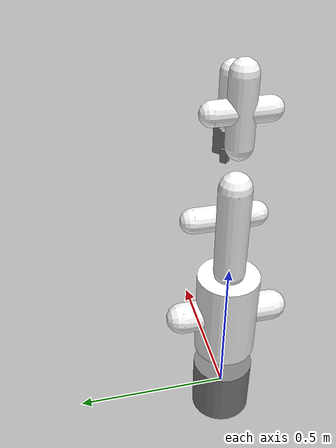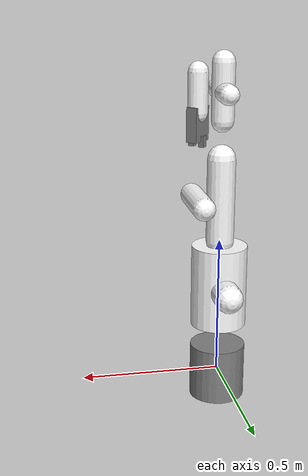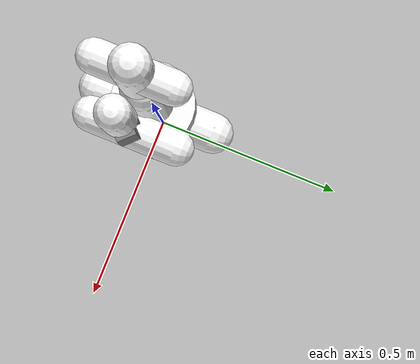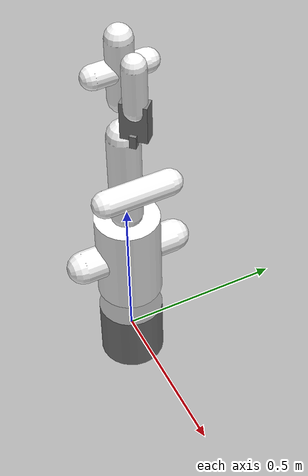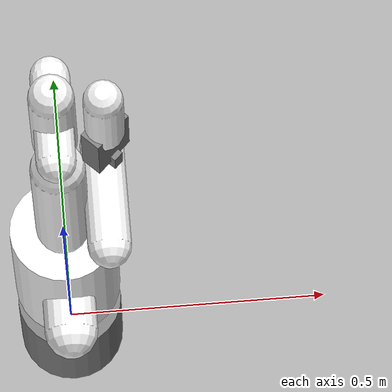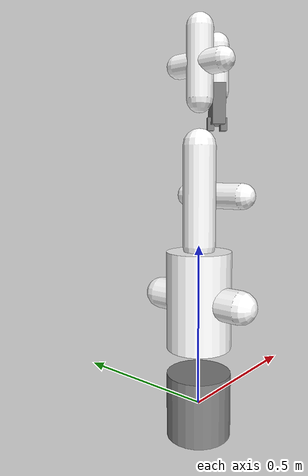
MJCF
<?xml version="1.0" ?>
<mujoco model="panda_simple">
    <compiler angle="radian" />

    <option timestep="0.002">
        <flag contact="disable" energy="enable"/>
    </option>

    <asset>
        <material name="white" rgba="1 1 1 1" />
        <material name="gray" rgba="0.5 0.5 0.5 1" />
        <material name="joint_chrome" rgba="0.7 0.7 0.7 1" />
    </asset>

    <worldbody>
        <light diffuse=".8 .8 .8" dir="0 -.15 -1" directional="true" pos="0 0 4.0" specular="0.3 0.3 0.3"/>
        <light diffuse=".8 .8 .8" dir="0 -.15 1" directional="true" pos="0 0 -4.0" specular="0.3 0.3 0.3"/>

        <!-- Robot base -->
        <body name="panda_link0" pos="0 0 0">
            <inertial pos="0 0 0" mass="4.970684" diaginertia="0.70337 0.70661 0.0091170" />
            <geom type="cylinder" size="0.1 0.1" material="gray" />

            <body name="panda_link1" pos="0 0 0.333">
                <joint name="panda_joint1" pos="0 0 0" axis="0 0 1" limited="true" range="-2.8973 2.8973" />
                <inertial pos="0 0 0" mass="4.970684" diaginertia="0.70337 0.70661 0.0091170" />
                <geom type="cylinder" size="0.1 0.15" material="white" />

                <body name="panda_link2" pos="0 0 0" quat="0.707107 -0.707107 0 0">
                    <joint name="panda_joint2" pos="0 0 0" axis="0 0 1" limited="true" range="-1.7628 1.7628" />
                    <inertial pos="-0.0324958 -0.0675823 -0.0418915" mass="0.646926" diaginertia="0.0079620 0.0079620 0.0079620" />
                    <geom type="capsule" size="0.05 0.15" material="white" />

                    <body name="panda_link3" pos="0 -0.316 0" quat="0.707107 0.707107 0 0">
                        <joint name="panda_joint3" pos="0 0 0" axis="0 0 1" limited="true" range="-2.8973 2.8973" />
                        <inertial pos="0.0375960 0.0349008 -0.0440875" mass="3.228604" diaginertia="0.0037440 0.0037440 0.0037440" />
                        <geom type="capsule" size="0.05 0.15" material="white" />

                        <body name="panda_link4" pos="0.0825 0 0" quat="0.707107 0.707107 0 0">
                            <joint name="panda_joint4" pos="0 0 0" axis="0 0 1" limited="true" range="-3.0718 -0.0698" />
                            <inertial pos="-0.0381353 0.0433282 0.0263291" mass="3.587895" diaginertia="0.0047310 0.0047310 0.0047310" />
                            <geom type="capsule" size="0.04 0.1" material="white" />

                            <body name="panda_link5" pos="-0.0825 0.384 0" quat="0.707107 -0.707107 0 0">
                                <joint name="panda_joint5" pos="0 0 0" axis="0 0 1" limited="true" range="-2.8973 2.8973" />
                                <inertial pos="0.0244869 -0.0435397 0.0188339" mass="1.225946" diaginertia="0.0035550 0.0035550 0.0035550" />
                                <geom type="capsule" size="0.04 0.1" material="white" />

                                <body name="panda_link6" pos="0 0 0" quat="0.707107 0.707107 0 0">
                                    <joint name="panda_joint6" pos="0 0 0" axis="0 0 1" limited="true" range="-0.0175 3.7525" />
                                    <inertial pos="0.0454768 0.0304835 -0.0141898" mass="1.666555" diaginertia="0.0042880 0.0042880 0.0042880" />
                                    <geom type="capsule" size="0.035 0.08" material="white" />

                                    <body name="panda_link7" pos="0.088 0 0" quat="0.707107 0.707107 0 0">
                                        <joint name="panda_joint7" pos="0 0 0" axis="0 0 1" limited="true" range="-2.8973 2.8973" />
                                        <inertial pos="0.0107343 -0.0060158 0.0147671" mass="0.735522" diaginertia="0.0004380 0.0004380 0.0004380" />
                                        <geom type="capsule" size="0.035 0.07" material="white" />

                                        <body name="panda_hand" pos="0 0 0.107" quat="0.92388 0 0 -0.382683">
                                            <inertial pos="0 0 0.0" mass="0.73" diaginertia="0.001 0.0025 0.0017" />
                                            <geom type="box" size="0.04 0.02 0.06" material="gray" />

                                            <!-- Fingers -->
                                            <body name="panda_leftfinger" pos="0 0.02 0.0584">
                                                <joint name="panda_finger_joint1" type="slide" axis="0 1 0" range="0 0.04" />
                                                <geom type="box" size="0.01 0.01 0.02" material="gray" />
                                            </body>
                                            <body name="panda_rightfinger" pos="0 -0.02 0.0584">
                                                <joint name="panda_finger_joint2" type="slide" axis="0 -1 0" range="0 0.04" />
                                                <geom type="box" size="0.01 0.01 0.02" material="gray" />
                                            </body>
                                        </body>
                                    </body>
                                </body>
                            </body>
                        </body>
                    </body>
                </body>
            </body>
        </body>
    </worldbody>

    <actuator>
        <!-- Position actuators -->
        <position name="panda_joint1_position" joint="panda_joint1" kp="100" />
        <position name="panda_joint2_position" joint="panda_joint2" kp="100" />
        <position name="panda_joint3_position" joint="panda_joint3" kp="100" />
        <position name="panda_joint4_position" joint="panda_joint4" kp="100" />
        <position name="panda_joint5_position" joint="panda_joint5" kp="100" />
        <position name="panda_joint6_position" joint="panda_joint6" kp="100" />
        <position name="panda_joint7_position" joint="panda_joint7" kp="100" />
        <position name="panda_finger_joint1_position" joint="panda_finger_joint1" kp="100" />
        <position name="panda_finger_joint2_position" joint="panda_finger_joint2" kp="100" />

        <!-- Velocity actuators -->
        <velocity name="panda_joint1_velocity" joint="panda_joint1" kv="10" />
        <velocity name="panda_joint2_velocity" joint="panda_joint2" kv="10" />
        <velocity name="panda_joint3_velocity" joint="panda_joint3" kv="10" />
        <velocity name="panda_joint4_velocity" joint="panda_joint4" kv="10" />
        <velocity name="panda_joint5_velocity" joint="panda_joint5" kv="10" />
        <velocity name="panda_joint6_velocity" joint="panda_joint6" kv="10" />
        <velocity name="panda_joint7_velocity" joint="panda_joint7" kv="10" />
    </actuator>

    <sensor>
        <jointpos name="panda_joint1_sensor" joint="panda_joint1" />
        <jointpos name="panda_joint2_sensor" joint="panda_joint2" />
        <jointpos name="panda_joint3_sensor" joint="panda_joint3" />
        <jointpos name="panda_joint4_sensor" joint="panda_joint4" />
        <jointpos name="panda_joint5_sensor" joint="panda_joint5" />
        <jointpos name="panda_joint6_sensor" joint="panda_joint6" />
        <jointpos name="panda_joint7_sensor" joint="panda_joint7" />
    </sensor>
</mujoco>
